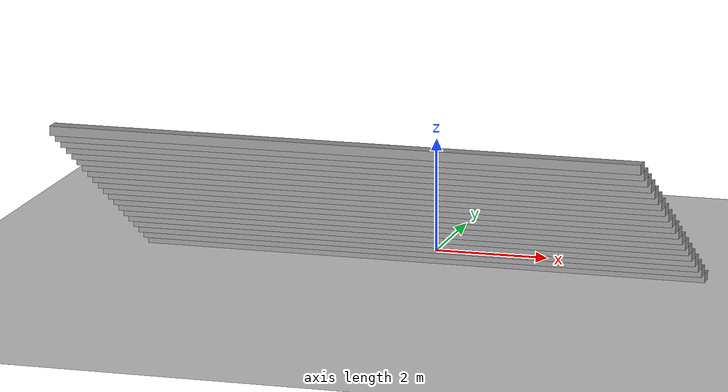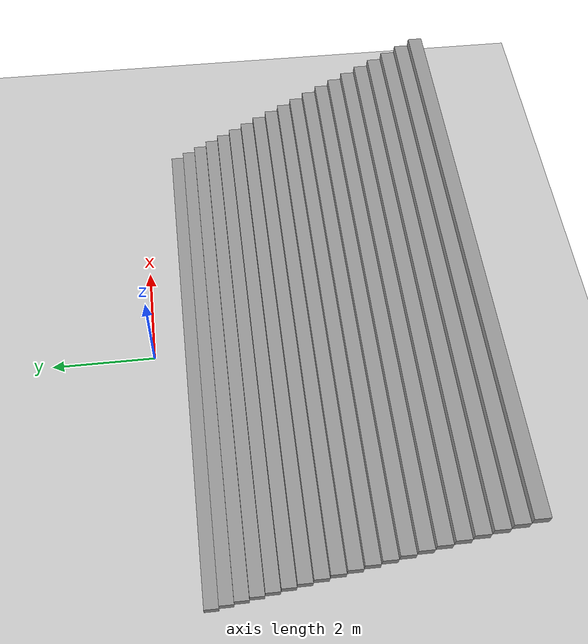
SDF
<sdf version="1.7">
 <world name="default">
  <light name="sun" type="directional">
   <pose>0 0 10 0 -0 0</pose>
   <diffuse>0.8 0.8 0.8 1</diffuse>
   <specular>0.2 0.2 0.2 1</specular>
   <attenuation>
    <range>1000</range>
    <constant>0.9</constant>
    <linear>0.01</linear>
    <quadratic>0.001</quadratic>
   </attenuation>
   <direction>-0.5 0.1 -0.9</direction>
   <spot><inner_angle>0</inner_angle><outer_angle>0</outer_angle><falloff>0</falloff></spot>
  </light>
  <model name="ground_plane">
   <static>1</static>
   <link name="link">
    <collision name="collision">
     <geometry><plane><normal>0 0 1</normal><size>100 100</size></plane></geometry>
     <surface>
      <contact><collide_bitmask>65535</collide_bitmask></contact>
      <friction><ode><mu>100</mu><mu2>50</mu2></ode></friction>
     </surface>
    </collision>
    <visual name="visual">
     <cast_shadows>0</cast_shadows>
     <geometry><plane><normal>0 0 1</normal><size>100 100</size></plane></geometry>
     <material>
      <script><uri>file://media/materials/scripts/gazebo.material</uri><name>Gazebo/Grey</name></script>
     </material>
    </visual>
   </link>
  </model>
  <gravity>0 0 -9.8</gravity>
  <magnetic_field>6e-06 2.3e-05 -4.2e-05</magnetic_field>
  <atmosphere type="adiabatic"/>
  <physics type="ode">
   <max_step_size>0.001</max_step_size>
   <real_time_factor>1</real_time_factor>
   <real_time_update_rate>1000</real_time_update_rate>
  </physics>
  <scene><ambient>0.4 0.4 0.4 1</ambient><background>0.7 0.7 0.7 1</background><shadows>1</shadows></scene>
  <spherical_coordinates>
   <surface_model>EARTH_WGS84</surface_model>
   <latitude_deg>0</latitude_deg>
   <longitude_deg>0</longitude_deg>
   <elevation>0</elevation>
   <heading_deg>0</heading_deg>
  </spherical_coordinates>
  <model name="Untitled">
   <pose>-0.015865 -2.90607 0 0 -0 0</pose>
   <link name="Stairs_1">
    <visual name="Stairs_1_Visual_0">
     <pose>-0 2.16393 0.08 0 -0 0</pose>
     <geometry><box><size>10 0.26 0.16</size></box></geometry>
     <material>
      <script><uri>file://media/materials/scripts/gazebo.material</uri><name>Gazebo/Grey</name></script>
      <ambient>1 1 1 1</ambient>
     </material>
     <meta><layer>0</layer></meta>
    </visual>
    <collision name="Stairs_1_Collision_0">
     <geometry><box><size>10 0.26 0.16</size></box></geometry>
     <pose>-0 2.16393 0.08 0 -0 0</pose>
    </collision>
    <visual name="Stairs_1_Visual_1">
     <pose>-0 1.90393 0.24 0 -0 0</pose>
     <geometry><box><size>10 0.26 0.16</size></box></geometry>
     <material>
      <script><uri>file://media/materials/scripts/gazebo.material</uri><name>Gazebo/Grey</name></script>
      <ambient>1 1 1 1</ambient>
     </material>
     <meta><layer>0</layer></meta>
    </visual>
    <collision name="Stairs_1_Collision_1">
     <geometry><box><size>10 0.26 0.16</size></box></geometry>
     <pose>-0 1.90393 0.24 0 -0 0</pose>
    </collision>
    <visual name="Stairs_1_Visual_2">
     <pose>-0 1.64393 0.4 0 -0 0</pose>
     <geometry><box><size>10 0.26 0.16</size></box></geometry>
     <material>
      <script><uri>file://media/materials/scripts/gazebo.material</uri><name>Gazebo/Grey</name></script>
      <ambient>1 1 1 1</ambient>
     </material>
     <meta><layer>0</layer></meta>
    </visual>
    <collision name="Stairs_1_Collision_2">
     <geometry><box><size>10 0.26 0.16</size></box></geometry>
     <pose>-0 1.64393 0.4 0 -0 0</pose>
    </collision>
    <visual name="Stairs_1_Visual_3">
     <pose>-0 1.38393 0.56 0 -0 0</pose>
     <geometry><box><size>10 0.26 0.16</size></box></geometry>
     <material>
      <script><uri>file://media/materials/scripts/gazebo.material</uri><name>Gazebo/Grey</name></script>
      <ambient>1 1 1 1</ambient>
     </material>
     <meta><layer>0</layer></meta>
    </visual>
    <collision name="Stairs_1_Collision_3">
     <geometry><box><size>10 0.26 0.16</size></box></geometry>
     <pose>-0 1.38393 0.56 0 -0 0</pose>
    </collision>
    <visual name="Stairs_1_Visual_4">
     <pose>-0 1.12393 0.72 0 -0 0</pose>
     <geometry><box><size>10 0.26 0.16</size></box></geometry>
     <material>
      <script><uri>file://media/materials/scripts/gazebo.material</uri><name>Gazebo/Grey</name></script>
      <ambient>1 1 1 1</ambient>
     </material>
     <meta><layer>0</layer></meta>
    </visual>
    <collision name="Stairs_1_Collision_4">
     <geometry><box><size>10 0.26 0.16</size></box></geometry>
     <pose>-0 1.12393 0.72 0 -0 0</pose>
    </collision>
    <visual name="Stairs_1_Visual_5">
     <pose>-0 0.863926 0.88 0 -0 0</pose>
     <geometry><box><size>10 0.26 0.16</size></box></geometry>
     <material>
      <script><uri>file://media/materials/scripts/gazebo.material</uri><name>Gazebo/Grey</name></script>
      <ambient>1 1 1 1</ambient>
     </material>
     <meta><layer>0</layer></meta>
    </visual>
    <collision name="Stairs_1_Collision_5">
     <geometry><box><size>10 0.26 0.16</size></box></geometry>
     <pose>-0 0.863926 0.88 0 -0 0</pose>
    </collision>
    <visual name="Stairs_1_Visual_6">
     <pose>-0 0.603926 1.04 0 -0 0</pose>
     <geometry><box><size>10 0.26 0.16</size></box></geometry>
     <material>
      <script><uri>file://media/materials/scripts/gazebo.material</uri><name>Gazebo/Grey</name></script>
      <ambient>1 1 1 1</ambient>
     </material>
     <meta><layer>0</layer></meta>
    </visual>
    <collision name="Stairs_1_Collision_6">
     <geometry><box><size>10 0.26 0.16</size></box></geometry>
     <pose>-0 0.603926 1.04 0 -0 0</pose>
    </collision>
    <visual name="Stairs_1_Visual_7">
     <pose>-0 0.343926 1.2 0 -0 0</pose>
     <geometry><box><size>10 0.26 0.16</size></box></geometry>
     <material>
      <script><uri>file://media/materials/scripts/gazebo.material</uri><name>Gazebo/Grey</name></script>
      <ambient>1 1 1 1</ambient>
     </material>
     <meta><layer>0</layer></meta>
    </visual>
    <collision name="Stairs_1_Collision_7">
     <geometry><box><size>10 0.26 0.16</size></box></geometry>
     <pose>-0 0.343926 1.2 0 -0 0</pose>
    </collision>
    <visual name="Stairs_1_Visual_8">
     <pose>-0 0.083926 1.36 0 -0 0</pose>
     <geometry><box><size>10 0.26 0.16</size></box></geometry>
     <material>
      <script><uri>file://media/materials/scripts/gazebo.material</uri><name>Gazebo/Grey</name></script>
      <ambient>1 1 1 1</ambient>
     </material>
     <meta><layer>0</layer></meta>
    </visual>
    <collision name="Stairs_1_Collision_8">
     <geometry><box><size>10 0.26 0.16</size></box></geometry>
     <pose>-0 0.083926 1.36 0 -0 0</pose>
    </collision>
    <visual name="Stairs_1_Visual_9">
     <pose>-0 -0.176074 1.52 0 -0 0</pose>
     <geometry><box><size>10 0.26 0.16</size></box></geometry>
     <material>
      <script><uri>file://media/materials/scripts/gazebo.material</uri><name>Gazebo/Grey</name></script>
      <ambient>1 1 1 1</ambient>
     </material>
     <meta><layer>0</layer></meta>
    </visual>
    <collision name="Stairs_1_Collision_9">
     <geometry><box><size>10 0.26 0.16</size></box></geometry>
     <pose>-0 -0.176074 1.52 0 -0 0</pose>
    </collision>
    <visual name="Stairs_1_Visual_10">
     <pose>-0 -0.436074 1.68 0 -0 0</pose>
     <geometry><box><size>10 0.26 0.16</size></box></geometry>
     <material>
      <script><uri>file://media/materials/scripts/gazebo.material</uri><name>Gazebo/Grey</name></script>
      <ambient>1 1 1 1</ambient>
     </material>
     <meta><layer>0</layer></meta>
    </visual>
    <collision name="Stairs_1_Collision_10">
     <geometry><box><size>10 0.26 0.16</size></box></geometry>
     <pose>-0 -0.436074 1.68 0 -0 0</pose>
    </collision>
    <visual name="Stairs_1_Visual_11">
     <pose>-0 -0.696074 1.84 0 -0 0</pose>
     <geometry><box><size>10 0.26 0.16</size></box></geometry>
     <material>
      <script><uri>file://media/materials/scripts/gazebo.material</uri><name>Gazebo/Grey</name></script>
      <ambient>1 1 1 1</ambient>
     </material>
     <meta><layer>0</layer></meta>
    </visual>
    <collision name="Stairs_1_Collision_11">
     <geometry><box><size>10 0.26 0.16</size></box></geometry>
     <pose>-0 -0.696074 1.84 0 -0 0</pose>
    </collision>
    <visual name="Stairs_1_Visual_12">
     <pose>-0 -0.956074 2 0 -0 0</pose>
     <geometry><box><size>10 0.26 0.16</size></box></geometry>
     <material>
      <script><uri>file://media/materials/scripts/gazebo.material</uri><name>Gazebo/Grey</name></script>
      <ambient>1 1 1 1</ambient>
     </material>
     <meta><layer>0</layer></meta>
    </visual>
    <collision name="Stairs_1_Collision_12">
     <geometry><box><size>10 0.26 0.16</size></box></geometry>
     <pose>-0 -0.956074 2 0 -0 0</pose>
    </collision>
    <visual name="Stairs_1_Visual_13">
     <pose>-0 -1.21607 2.16 0 -0 0</pose>
     <geometry><box><size>10 0.26 0.16</size></box></geometry>
     <material>
      <script><uri>file://media/materials/scripts/gazebo.material</uri><name>Gazebo/Grey</name></script>
      <ambient>1 1 1 1</ambient>
     </material>
     <meta><layer>0</layer></meta>
    </visual>
    <collision name="Stairs_1_Collision_13">
     <geometry><box><size>10 0.26 0.16</size></box></geometry>
     <pose>-0 -1.21607 2.16 0 -0 0</pose>
    </collision>
    <visual name="Stairs_1_Visual_14">
     <pose>-0 -1.47607 2.32 0 -0 0</pose>
     <geometry><box><size>10 0.26 0.16</size></box></geometry>
     <material>
      <script><uri>file://media/materials/scripts/gazebo.material</uri><name>Gazebo/Grey</name></script>
      <ambient>1 1 1 1</ambient>
     </material>
     <meta><layer>0</layer></meta>
    </visual>
    <collision name="Stairs_1_Collision_14">
     <geometry><box><size>10 0.26 0.16</size></box></geometry>
     <pose>-0 -1.47607 2.32 0 -0 0</pose>
    </collision>
    <visual name="Stairs_1_Visual_15">
     <pose>-0 -1.73607 2.48 0 -0 0</pose>
     <geometry><box><size>10 0.26 0.16</size></box></geometry>
     <material>
      <script><uri>file://media/materials/scripts/gazebo.material</uri><name>Gazebo/Grey</name></script>
      <ambient>1 1 1 1</ambient>
     </material>
     <meta><layer>0</layer></meta>
    </visual>
    <collision name="Stairs_1_Collision_15">
     <geometry><box><size>10 0.26 0.16</size></box></geometry>
     <pose>-0 -1.73607 2.48 0 -0 0</pose>
    </collision>
    <visual name="Stairs_1_Visual_16">
     <pose>-0 -1.99607 2.64 0 -0 0</pose>
     <geometry><box><size>10 0.26 0.16</size></box></geometry>
     <material>
      <script><uri>file://media/materials/scripts/gazebo.material</uri><name>Gazebo/Grey</name></script>
      <ambient>1 1 1 1</ambient>
     </material>
     <meta><layer>0</layer></meta>
    </visual>
    <collision name="Stairs_1_Collision_16">
     <geometry><box><size>10 0.26 0.16</size></box></geometry>
     <pose>-0 -1.99607 2.64 0 -0 0</pose>
    </collision>
    <visual name="Stairs_1_Visual_17">
     <pose>-0 -2.25607 2.8 0 -0 0</pose>
     <geometry><box><size>10 0.26 0.16</size></box></geometry>
     <material>
      <script><uri>file://media/materials/scripts/gazebo.material</uri><name>Gazebo/Grey</name></script>
      <ambient>1 1 1 1</ambient>
     </material>
     <meta><layer>0</layer></meta>
    </visual>
    <collision name="Stairs_1_Collision_17">
     <geometry><box><size>10 0.26 0.16</size></box></geometry>
     <pose>-0 -2.25607 2.8 0 -0 0</pose>
    </collision>
    <visual name="Stairs_1_Visual_18">
     <pose>-0 -2.51607 2.96 0 -0 0</pose>
     <geometry><box><size>10 0.26 0.16</size></box></geometry>
     <material>
      <script><uri>file://media/materials/scripts/gazebo.material</uri><name>Gazebo/Grey</name></script>
      <ambient>1 1 1 1</ambient>
     </material>
     <meta><layer>0</layer></meta>
    </visual>
    <collision name="Stairs_1_Collision_18">
     <geometry><box><size>10 0.26 0.16</size></box></geometry>
     <pose>-0 -2.51607 2.96 0 -0 0</pose>
    </collision>
    <visual name="Stairs_1_Visual_19">
     <pose>-0 -2.77607 3.12 0 -0 0</pose>
     <geometry><box><size>10 0.26 0.16</size></box></geometry>
     <material>
      <script><uri>file://media/materials/scripts/gazebo.material</uri><name>Gazebo/Grey</name></script>
      <ambient>1 1 1 1</ambient>
     </material>
     <meta><layer>0</layer></meta>
    </visual>
    <collision name="Stairs_1_Collision_19">
     <geometry><box><size>10 0.26 0.16</size></box></geometry>
     <pose>-0 -2.77607 3.12 0 -0 0</pose>
    </collision>
   </link>
   <static>1</static>
  </model>
 </world>
</sdf>
